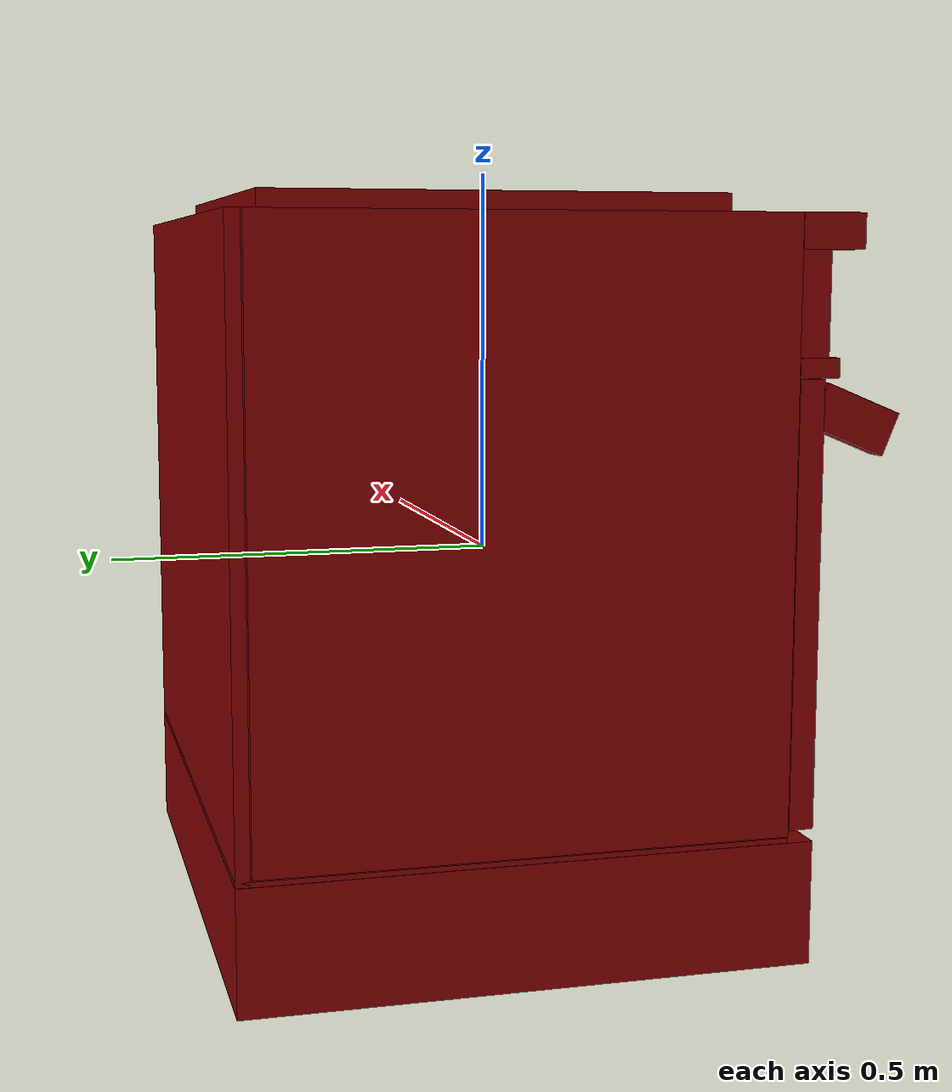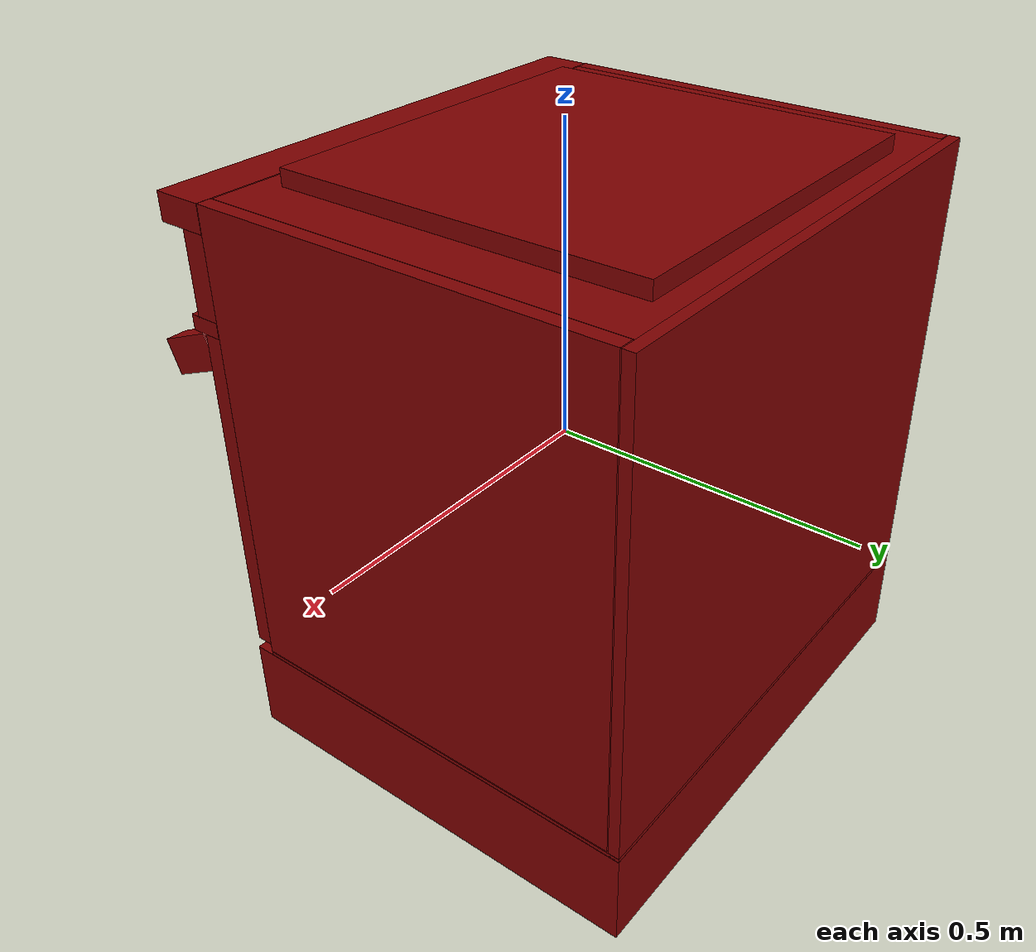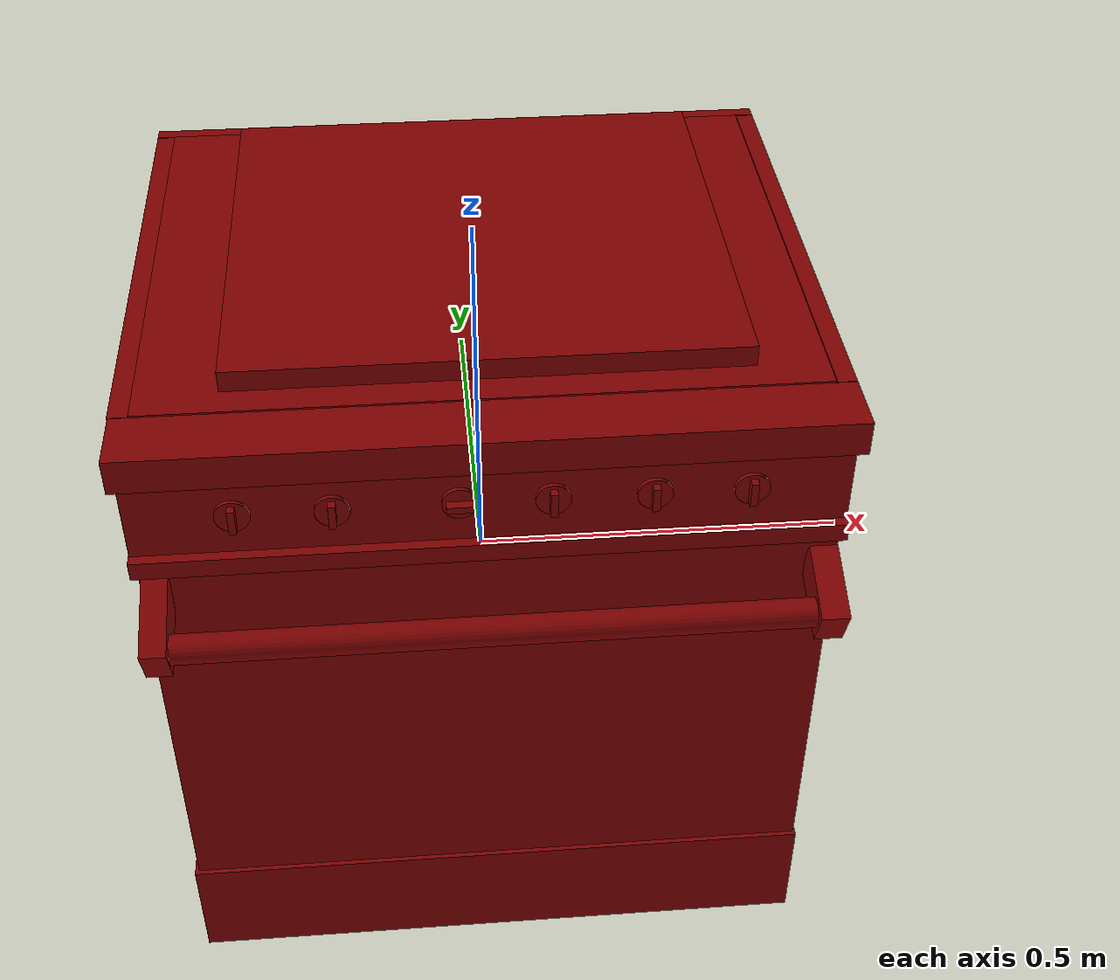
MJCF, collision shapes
<?xml version='1.0' encoding='UTF-8'?>
<mujoco model="model">
  <option timestep="0.002" gravity="0.0 0.0 -9.81"/>
  <compiler angle="radian"/>
  <asset>
    <mesh file="visuals/door.obj" name="door_vis"/>
    <mesh file="visuals/door_Clear.obj" name="door_Clear_vis"/>
    <mesh file="visuals/knob_front_left.obj" name="knob_front_left_vis"/>
    <mesh file="visuals/knob_front_right.obj" name="knob_front_right_vis"/>
    <mesh file="visuals/knob_rear_left.obj" name="knob_rear_left_vis"/>
    <mesh file="visuals/knob_rear_right.obj" name="knob_rear_right_vis"/>
    <mesh file="visuals/knob_temp.obj" name="knob_temp_vis"/>
    <mesh file="visuals/knob_time.obj" name="knob_time_vis"/>
    <mesh file="visuals/rack0.obj" name="rack0_vis"/>
    <mesh file="visuals/Body001.obj" name="Body001_vis"/>
    <texture file="visuals/T_BC001.png" name="Body001_material" type="2d"/>
    <material name="Body001_material" rgba="1 1 1 1.0" texture="Body001_material" shininess="0.44721364974975586" specular="2"/>
    <texture file="visuals/T_BC001.png" name="door_material" type="2d"/>
    <material name="door_material" rgba="1 1 1 1.0" texture="door_material" shininess="0.44721364974975586" specular="2"/>
    <material name="door_Clear_material" rgba="0.03637736663222313 0.03637736663222313 0.03637736663222313 0.75" shininess="0.5962963700294495" specular="2"/>
    <texture file="visuals/T_BC001.png" name="knob_front_left_material" type="2d"/>
    <material name="knob_front_left_material" rgba="1 1 1 1.0" texture="knob_front_left_material" shininess="0.44721364974975586" specular="2"/>
    <texture file="visuals/T_BC001.png" name="knob_front_right_material" type="2d"/>
    <material name="knob_front_right_material" rgba="1 1 1 1.0" texture="knob_front_right_material" shininess="0.44721364974975586" specular="2"/>
    <texture file="visuals/T_BC001.png" name="knob_rear_left_material" type="2d"/>
    <material name="knob_rear_left_material" rgba="1 1 1 1.0" texture="knob_rear_left_material" shininess="0.44721364974975586" specular="2"/>
    <texture file="visuals/T_BC001.png" name="knob_rear_right_material" type="2d"/>
    <material name="knob_rear_right_material" rgba="1 1 1 1.0" texture="knob_rear_right_material" shininess="0.44721364974975586" specular="2"/>
    <texture file="visuals/T_BC001.png" name="knob_temp_material" type="2d"/>
    <material name="knob_temp_material" rgba="1 1 1 1.0" texture="knob_temp_material" shininess="0.44721364974975586" specular="2"/>
    <texture file="visuals/T_BC001.png" name="knob_time_material" type="2d"/>
    <material name="knob_time_material" rgba="1 1 1 1.0" texture="knob_time_material" shininess="0.44721364974975586" specular="2"/>
    <texture file="visuals/T_BC001.png" name="rack0_material" type="2d"/>
    <material name="rack0_material" rgba="1 1 1 1.0" texture="rack0_material" shininess="0.44721364974975586" specular="2"/>
  </asset>
  <default>
    <default class="visual">
      <geom conaffinity="0" contype="0" group="1" type="mesh"/>
    </default>
    <default class="collision">
      <geom group="0" rgba="0.5 0 0 0.5"/>
    </default>
    <default class="spawn">
      <geom group="0" rgba="1 1 1 0.5" contype="0" conaffinity="0"/>
      <site group="0" rgba="1 1 1 0.5"/>
    </default>
    <default class="region">
      <geom group="1" conaffinity="0" contype="0" rgba="0 1 0 0"/>
    </default>
  </default>
  <worldbody>
    <body>
      <body name="object">
        <geom mesh="Body001_vis" type="mesh" solimp="0.998 0.998 0.001" solref="0.001 1" friction="0.95 0.3 0.1" class="visual" material="Body001_material"/>
        <geom class="collision" type="box" pos="0.00037752 0.04951477 -0.38885561" size="0.41547325253486633 0.35028430819511414 0.07730139046907425" quat="1.0 0.0 0.0 0.0"/>
        <geom class="collision" type="box" pos="0.00138670 -0.28710275 0.33388931" size="0.4144640564918518 0.018988844007253647 0.06398515403270721" quat="1.0 0.0 0.0 0.0"/>
        <geom class="collision" type="box" pos="-0.00071138 0.05755935 0.34704480" size="0.39315736293792725 0.32478001713752747 0.09320297837257385" quat="1.0 0.0 0.0 0.0"/>
        <geom class="collision" type="box" pos="-0.40372893 0.05568745 0.06829239" size="0.011367158964276314 0.32466089725494385 0.37195631861686707" quat="1.0 0.0 0.0 0.0"/>
        <geom class="collision" type="box" pos="0.00037751 0.39096863 0.06459194" size="0.41547325253486633 0.008828466758131981 0.3756566345691681" quat="1.0 0.0 0.0 0.0"/>
        <geom class="collision" type="box" pos="0.00098635 -0.30900269 0.41895768" size="0.4148644208908081 0.03909210488200188 0.021290794014930725" quat="1.0 0.0 0.0 0.0"/>
        <geom class="collision" type="box" pos="0.00098635 -0.29480635 0.26005253" size="0.4148644208908081 0.02489517629146576 0.011899338103830814" quat="1.0 0.0 0.0 0.0"/>
        <geom class="collision" type="box" pos="0.40448382 0.05568745 0.06829342" size="0.011367149651050568 0.324656218290329 0.37195488810539246" quat="1.0 0.0 0.0 0.0"/>
        <geom class="collision" type="box" pos="-0.37579823 0.07422574 0.00023189" size="0.019609661772847176 0.30704760551452637 0.012386194430291653" quat="1.0 0.0 0.0 0.0"/>
        <geom class="collision" type="box" pos="0.37662300 0.07422574 0.00023189" size="0.019609661772847176 0.30704760551452637 0.012386194430291653" quat="1.0 0.0 0.0 0.0"/>
        <geom class="collision" type="box" pos="0.00037752 0.06589912 -0.30809632" size="0.41547325253486633 0.33389872312545776 0.0031825448386371136" quat="1.0 0.0 0.0 0.0"/>
        <geom class="collision" type="box" pos="0.00652395 0.05939430 0.45257750" size="0.3028430640697479 0.28874319791793823 0.013576631434261799" quat="1.0 0.0 0.0 0.0"/>
        <body name="door">
          <joint axis="1.0 0.0 0.0" pos="0.00091382 -0.29979728 -0.29778802" limited="true" name="door_joint" range="0.0 1.5707963267948966" type="hinge" damping="1" frictionloss="1" armature=".01" stiffness="1.5" springref="-1.5"/>
          <geom mesh="door_vis" type="mesh" solimp="0.998 0.998 0.001" solref="0.001 1" friction="0.95 0.3 0.1" class="visual" material="door_material"/>
          <geom class="collision" type="box" pos="0.00112948 -0.28902607 -0.02583432" size="0.4087790548801422 0.015568030066788197 0.27275004982948303" quat="1.0 0.0 0.0 0.0" name="door_main"/>
          <geom class="collision" type="box" pos="0.38954198 -0.35051738 0.19622330" size="0.017010247334837914 0.04774216562509537 0.02735132724046707" quat="0.9817447066307068 0.19020341336727142 1.8855143657421613e-18 -3.4843584851573193e-19"/>
          <geom class="collision" type="cylinder" pos="-0.00042244 -0.37773244 0.19093114" size="0.01784185878932476 0.37185418605804443" quat="0.7071068286895752 -0.0 0.7071067690849304 0.0" name="door_handle_main"/>
          <geom class="collision" type="box" pos="-0.38860923 -0.34677105 0.19817033" size="0.015407290309667587 0.05015219748020172 0.027351271361112595" quat="0.981132447719574 0.19333681464195251 1.630948539612232e-17 -2.4072808709865224e-18"/>
          <geom class="collision" type="box" pos="0.00961035 -0.29197751 0.01917967" size="0.31197333335876465 0.003127892967313528 0.14276011288166046" quat="1.0 0.0 0.0 0.0"/>
          <body name="door_Clear">
            <geom mesh="door_Clear_vis" type="mesh" solimp="0.998 0.998 0.001" solref="0.001 1" friction="0.95 0.3 0.1" class="visual" material="door_Clear_material"/>
            <geom class="collision" type="box" pos="0.00961035 -0.29197751 0.01917967" size="0.31197333335876465 0.003127892967313528 0.14276011288166046" quat="1.0 0.0 0.0 0.0"/>
          </body>
        </body>
        <body name="knob_front_left">
          <joint axis="0.0 -1.0 0.0" pos="-0.29030493 -0.31438153 0.32659942" limited="true" name="knob_front_left_joint" range="0.0 3.752457891787808" type="hinge" damping="0.05" armature="1" frictionloss="0.75"/>
          <geom mesh="knob_front_left_vis" type="mesh" solimp="0.998 0.998 0.001" solref="0.001 1" friction="0.95 0.3 0.1" class="visual" material="knob_front_left_material"/>
          <geom class="collision" type="cylinder" pos="-0.29039830 -0.30932270 0.32661963" size="0.020548343658447266 0.0026434955652803183" quat="0.7071067094802856 0.70710688829422 0.0 0.0" friction="100 0.5 0.01"/>
          <geom class="collision" type="box" pos="-0.29027763 -0.31755911 0.32670897" size="0.004265603609383106 0.00580366887152195 0.015670906752347946" quat="1.0 0.0 0.0 0.0" name="knob_front_left_main" friction="100 0.5 0.01"/>
        </body>
        <body name="knob_front_right">
          <joint axis="0.0 -1.0 0.0" pos="0.29908475 -0.31438153 0.32659942" limited="true" name="knob_front_right_joint" range="0.0 3.752457891787808" type="hinge" damping="0.05" armature="1" frictionloss="0.75"/>
          <geom mesh="knob_front_right_vis" type="mesh" solimp="0.998 0.998 0.001" solref="0.001 1" friction="0.95 0.3 0.1" class="visual" material="knob_front_right_material"/>
          <geom class="collision" type="box" pos="0.29893717 -0.31755911 0.32670897" size="0.004265603609383106 0.00580366887152195 0.015670906752347946" quat="1.0 0.0 0.0 0.0" name="knob_front_right_main" friction="100 0.5 0.01"/>
          <geom class="collision" type="cylinder" pos="0.29881650 -0.30932270 0.32661963" size="0.020548343658447266 0.0026434955652803183" quat="0.7071067094802856 0.70710688829422 0.0 0.0" friction="100 0.5 0.01"/>
        </body>
        <body name="knob_rear_left">
          <joint axis="0.0 -1.0 0.0" pos="-0.17857939 -0.31438153 0.32659942" limited="true" name="knob_rear_left_joint" range="0.0 3.752457891787808" type="hinge" damping="0.05" armature="1" frictionloss="0.75"/>
          <geom mesh="knob_rear_left_vis" type="mesh" solimp="0.998 0.998 0.001" solref="0.001 1" friction="0.95 0.3 0.1" class="visual" material="knob_rear_left_material"/>
          <geom class="collision" type="box" pos="-0.17870803 -0.31755911 0.32670897" size="0.004265603609383106 0.00580366887152195 0.015670906752347946" quat="1.0 0.0 0.0 0.0" name="knob_rear_left_main" friction="100 0.5 0.01"/>
          <geom class="collision" type="cylinder" pos="-0.17882872 -0.30932270 0.32661963" size="0.020548343658447266 0.0026434955652803183" quat="0.7071067094802856 0.70710688829422 0.0 0.0" friction="100 0.5 0.01"/>
        </body>
        <body name="knob_rear_right">
          <joint axis="0.0 -1.0 0.0" pos="0.18710460 -0.31438153 0.32659942" limited="true" name="knob_rear_right_joint" range="0.0 3.752457891787808" type="hinge" damping="0.05" armature="1" frictionloss="0.75"/>
          <geom mesh="knob_rear_right_vis" type="mesh" solimp="0.998 0.998 0.001" solref="0.001 1" friction="0.95 0.3 0.1" class="visual" material="knob_rear_right_material"/>
          <geom class="collision" type="box" pos="0.18710096 -0.31755911 0.32670897" size="0.004265603609383106 0.00580366887152195 0.015670906752347946" quat="1.0 0.0 0.0 0.0" name="knob_rear_right_main" friction="100 0.5 0.01"/>
          <geom class="collision" type="cylinder" pos="0.18698028 -0.30932270 0.32661963" size="0.020548343658447266 0.0026434955652803183" quat="0.7071067094802856 0.70710688829422 0.0 0.0" friction="100 0.5 0.01"/>
        </body>
        <body name="knob_temp">
          <joint axis="0.0 1.0 0.0" pos="0.07104202 -0.31438153 0.32659942" limited="true" name="knob_temp_joint" range="0.0 5.672320068981571" type="hinge" damping="0.05" armature="1" frictionloss="0.75"/>
          <geom mesh="knob_temp_vis" type="mesh" solimp="0.998 0.998 0.001" solref="0.001 1" friction="0.95 0.3 0.1" class="visual" material="knob_temp_material"/>
          <geom class="collision" type="box" pos="0.07098490 -0.31755911 0.32670897" size="0.004265603609383106 0.00580366887152195 0.015670906752347946" quat="1.0 0.0 0.0 0.0" name="knob_temp_main" friction="100 0.5 0.01"/>
          <geom class="collision" type="cylinder" pos="0.07086422 -0.30932270 0.32661963" size="0.020548343658447266 0.0026434955652803183" quat="0.7071067094802856 0.70710688829422 0.0 0.0" friction="100 0.5 0.01"/>
        </body>
        <body name="knob_time">
          <joint axis="0.0 1.0 0.0" pos="-0.03534382 -0.31438153 0.32812703" limited="true" name="knob_time_joint" range="0.0 5.323254218582705" type="hinge" damping="0.05" armature="1" frictionloss="0.75"/>
          <geom mesh="knob_time_vis" type="mesh" solimp="0.998 0.998 0.001" solref="0.001 1" friction="0.95 0.3 0.1" class="visual" material="knob_time_material"/>
          <geom class="collision" type="box" pos="-0.03533915 -0.31755911 0.32804662" size="0.015670908614993095 0.00580366887152195 0.004265605006366968" quat="1.0 0.0 0.0 0.0" name="knob_time_main" friction="100 0.5 0.01"/>
          <geom class="collision" type="cylinder" pos="-0.03545984 -0.30932270 0.32795727" size="0.020548343658447266 0.0026434955652803183" quat="0.7071067094802856 0.70710688829422 0.0 0.0" friction="100 0.5 0.01"/>
        </body>
        <body name="rack0">
          <geom class="region" name="reg_rack0" type="box" pos="0.000812055000000006 0.05770002000000002 0.13592588" size="0.355067385 0.30962972 0.10841022"/>
          <joint axis="0.0 -1.0 0.0" pos="-0.00299478 0.05799254 0.02016112" limited="true" name="rack0_joint" range="0.0 0.5" type="slide" damping="1" frictionloss="1" armature=".01" stiffness="0.05"/>
          <geom mesh="rack0_vis" type="mesh" solimp="0.998 0.998 0.001" solref="0.001 1" friction="0.95 0.3 0.1" class="visual" material="rack0_material"/>
          <geom class="collision" type="box" pos="-0.00270093 0.05813731 0.02007565" size="0.3731922209262848 0.3125592768192291 0.006199235562235117" quat="1.0 0.0 0.0 0.0"/>
        </body>
        <site type="cylinder" rgba="0.3 0.4 1 0.5" size="0.046472884714603424 0.008999999612569809" pos="-0.14993323 -0.08740604 0.44947699" name="burner_on_front_left"/>
        <site type="cylinder" rgba="0.3 0.4 1 0.5" size="0.051413267850875854 0.008999999612569809" pos="0.16179623 -0.08874774 0.44947699" name="burner_on_front_right"/>
        <site type="cylinder" rgba="0.3 0.4 1 0.5" size="0.03920497000217438 0.008999999612569809" pos="-0.14702052 0.20481237 0.44947699" name="burner_on_rear_left"/>
        <site type="cylinder" rgba="0.3 0.4 1 0.5" size="0.05123249813914299 0.008999999612569809" pos="0.16075550 0.20553973 0.44947699" name="burner_on_rear_right"/>
        <geom class="region" name="reg_int" type="box" pos="-0.0001755950000000006 0.05558216499999999 -0.02772807500000002" size="0.387648055 0.319311765 0.271024965"/>
        <site type="cylinder" rgba="0.5 0 0 0" size="0.046472884714603424 4.999999873689376e-05" pos="-0.14993323 -0.08740604 0.46626598" name="burner_front_left_place_site"/>
        <site type="cylinder" rgba="0.5 0 0 0" size="0.051413267850875854 4.999999873689376e-05" pos="0.16179623 -0.08874774 0.46626598" name="burner_front_right_place_site"/>
        <site type="cylinder" rgba="0.5 0 0 0" size="0.03920497000217438 4.999999873689376e-05" pos="-0.14702052 0.20481237 0.46626598" name="burner_rear_left_place_site"/>
        <site type="cylinder" rgba="0.5 0 0 0" size="0.05123249813914299 4.999999873689376e-05" pos="0.16075550 0.20553973 0.46626598" name="burner_rear_right_place_site"/>
        <geom class="region" name="reg_main" type="box" pos="-9.999999994736442e-09 0.04683689500000002 -0.012953744999999989" size="0.41685067 0.353960195 0.454201235"/>
      </body>
    </body>
  </worldbody>
  <actuator>
    <motor name="door_joint_actuator" joint="door_joint" gear="50"/>
    <motor name="knob_front_left_joint_actuator" joint="knob_front_left_joint" gear="50"/>
    <motor name="knob_front_right_joint_actuator" joint="knob_front_right_joint" gear="50"/>
    <motor name="knob_rear_left_joint_actuator" joint="knob_rear_left_joint" gear="50"/>
    <motor name="knob_rear_right_joint_actuator" joint="knob_rear_right_joint" gear="50"/>
    <motor name="knob_temp_joint_actuator" joint="knob_temp_joint" gear="50"/>
    <motor name="knob_time_joint_actuator" joint="knob_time_joint" gear="50"/>
    <motor name="rack0_joint_actuator" joint="rack0_joint" gear="50"/>
  </actuator>
</mujoco>
